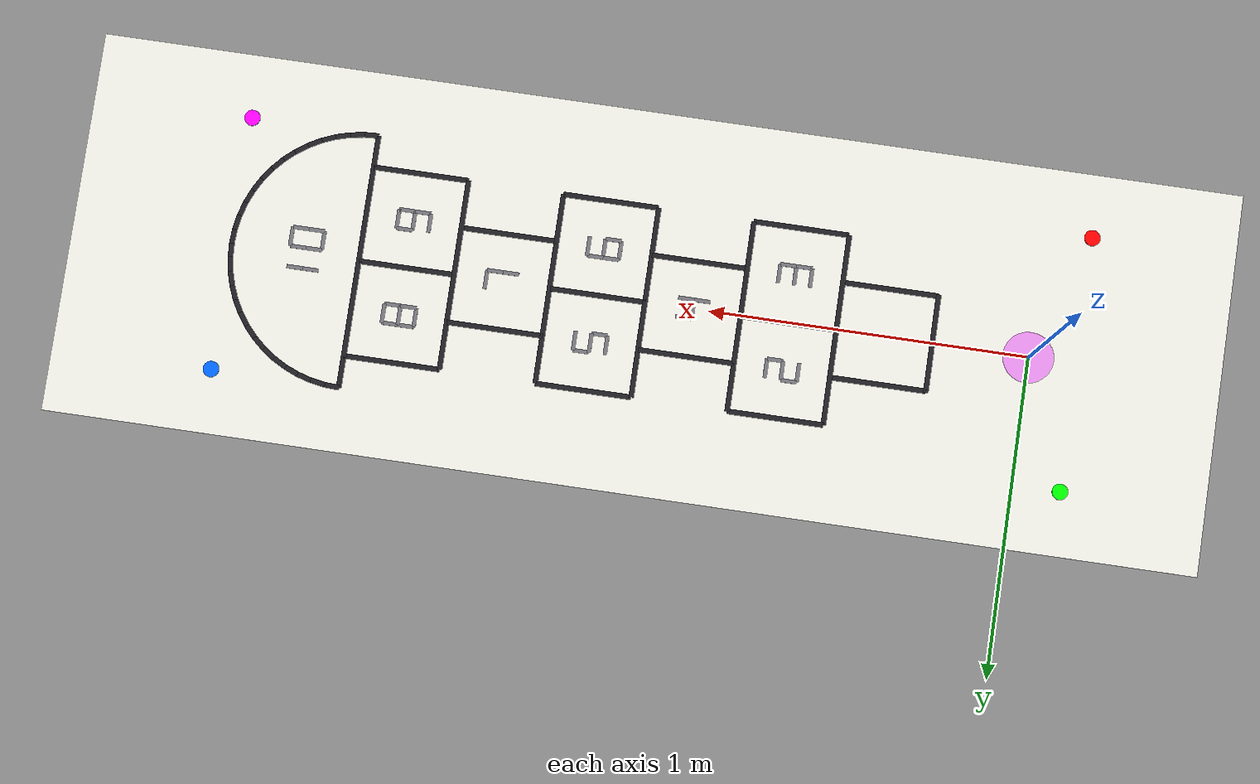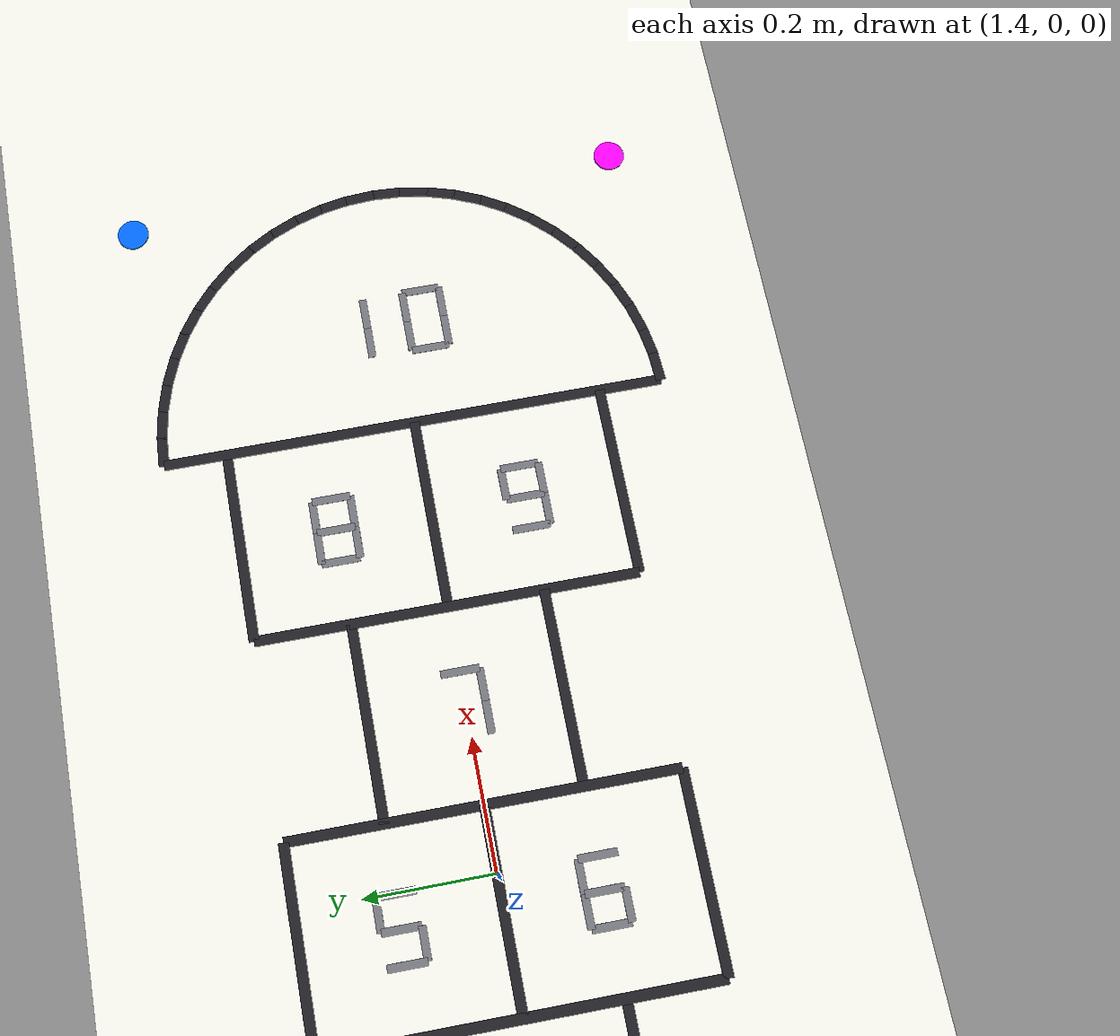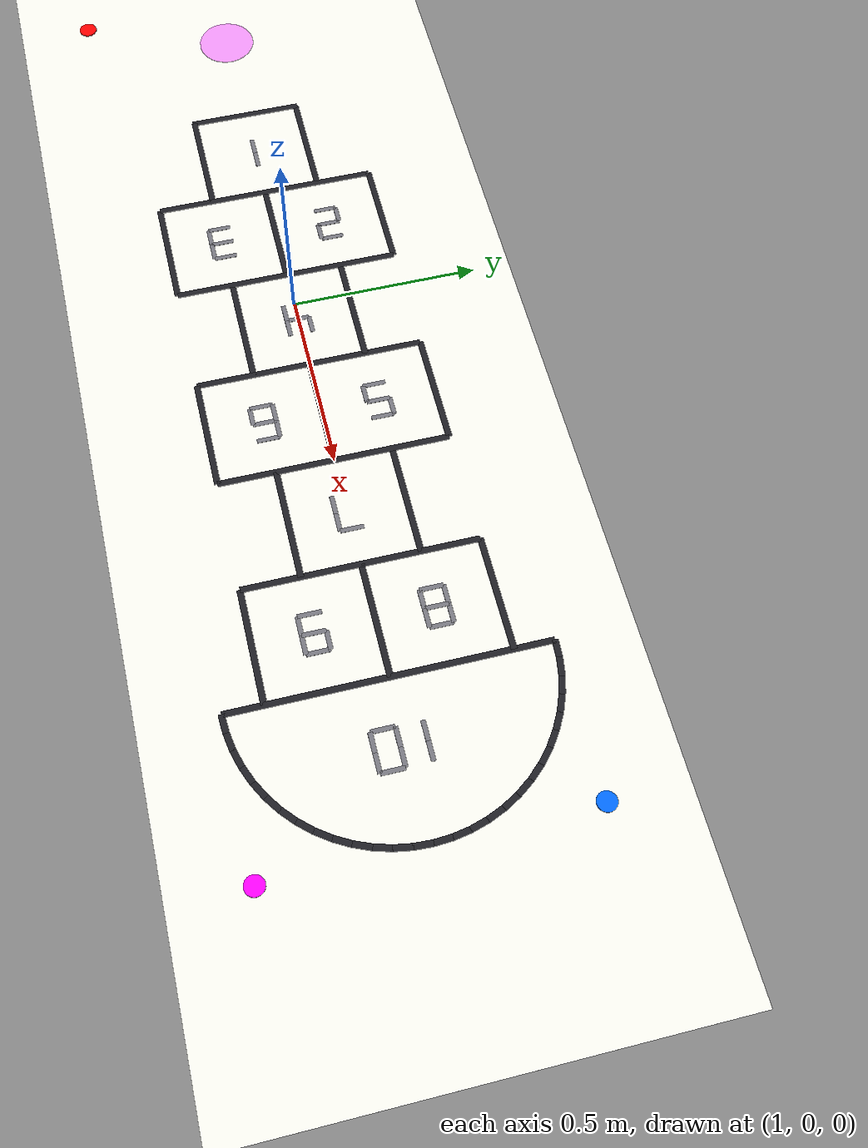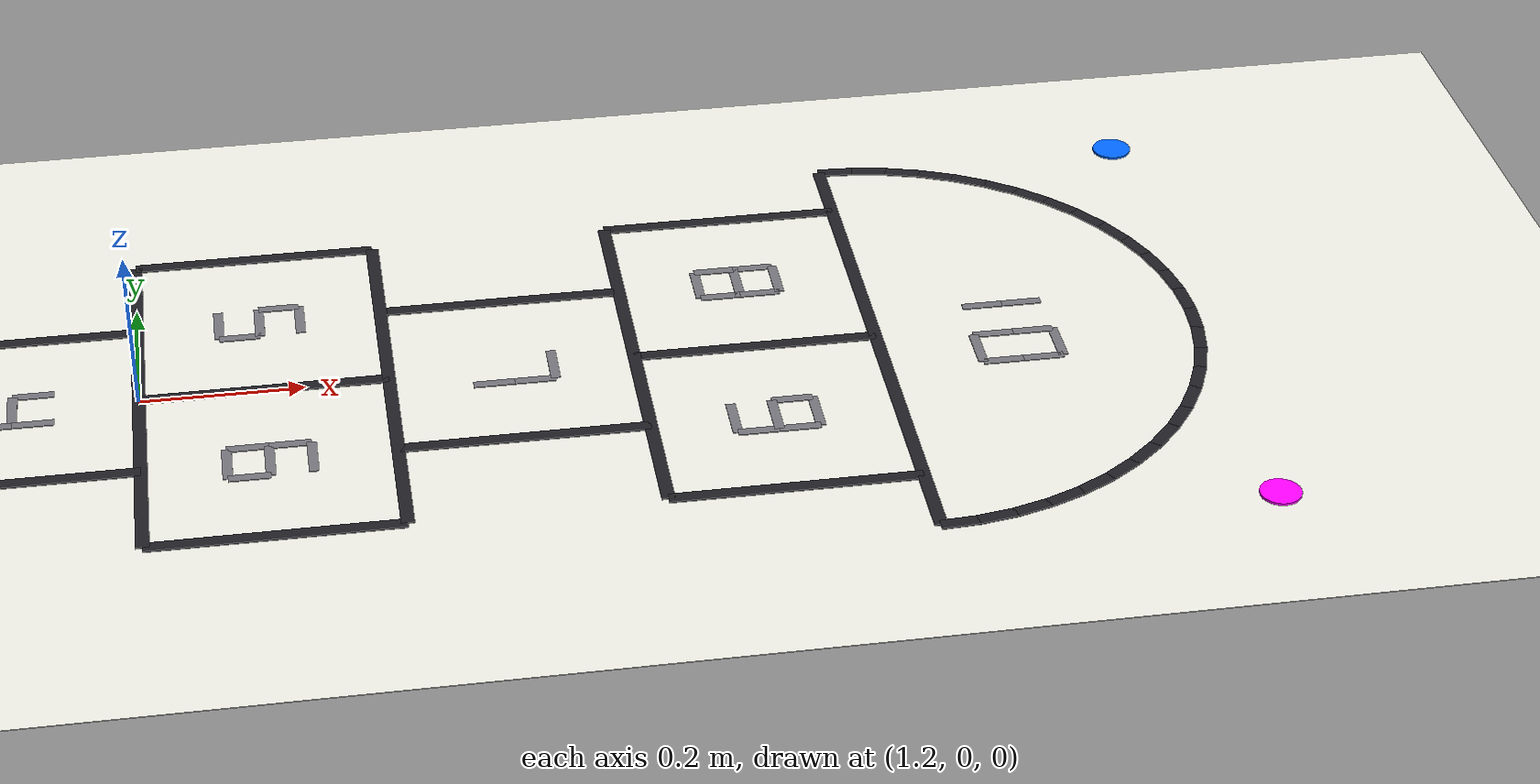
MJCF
<?xml version='1.0' encoding='utf-8'?>
<mujoco model="tablero_rayuela">
  <visual>
    <global offwidth="1280" offheight="720" />
  </visual>
  <worldbody>
    <geom name="board_plate" type="box" size="1.8000 0.60000 0.0005" pos="1.2000 0 0.0005" rgba="0.93 0.93 0.90 1" contype="0" conaffinity="0" />
    <geom name="board_hline_0" type="box" size="0.008 0.1550 0.0015" pos="0.30000 0.00000 0.0015" rgba="0.12 0.12 0.14 1" contype="0" conaffinity="0" />
    <geom name="board_hline_1" type="box" size="0.008 0.3000 0.0015" pos="0.60000 0.00000 0.0015" rgba="0.12 0.12 0.14 1" contype="0" conaffinity="0" />
    <geom name="board_hline_2" type="box" size="0.008 0.3000 0.0015" pos="0.90000 0.00000 0.0015" rgba="0.12 0.12 0.14 1" contype="0" conaffinity="0" />
    <geom name="board_hline_3" type="box" size="0.008 0.3000 0.0015" pos="1.20000 0.00000 0.0015" rgba="0.12 0.12 0.14 1" contype="0" conaffinity="0" />
    <geom name="board_hline_4" type="box" size="0.008 0.3000 0.0015" pos="1.50000 0.00000 0.0015" rgba="0.12 0.12 0.14 1" contype="0" conaffinity="0" />
    <geom name="board_hline_5" type="box" size="0.008 0.3000 0.0015" pos="1.80000 0.00000 0.0015" rgba="0.12 0.12 0.14 1" contype="0" conaffinity="0" />
    <geom name="board_hline_6" type="box" size="0.008 0.4000 0.0015" pos="2.10000 0.00000 0.0015" rgba="0.12 0.12 0.14 1" contype="0" conaffinity="0" />

    <geom name="board_edge1_left" type="box" size="0.15000 0.008 0.0015" pos="0.4500 -0.150000 0.0015" rgba="0.12 0.12 0.14 1" contype="0" conaffinity="0" />
    <geom name="board_edge1_right" type="box" size="0.15000 0.008 0.0015" pos="0.4500 0.150000 0.0015" rgba="0.12 0.12 0.14 1" contype="0" conaffinity="0" />
    <geom name="board_edge2" type="box" size="0.15000 0.008 0.0015" pos="0.7500 -0.3000 0.0015" rgba="0.12 0.12 0.14 1" contype="0" conaffinity="0" />
    <geom name="board_edge3" type="box" size="0.15000 0.008 0.0015" pos="0.7500 0.3000 0.0015" rgba="0.12 0.12 0.14 1" contype="0" conaffinity="0" />
    <geom name="board_edge4_left" type="box" size="0.15000 0.008 0.0015" pos="1.0500 -0.150000 0.0015" rgba="0.12 0.12 0.14 1" contype="0" conaffinity="0" />
    <geom name="board_edge4_right" type="box" size="0.15000 0.008 0.0015" pos="1.0500 0.150000 0.0015" rgba="0.12 0.12 0.14 1" contype="0" conaffinity="0" />
    <geom name="board_edge5" type="box" size="0.15000 0.008 0.0015" pos="1.3500 -0.3000 0.0015" rgba="0.12 0.12 0.14 1" contype="0" conaffinity="0" />
    <geom name="board_edge6" type="box" size="0.15000 0.008 0.0015" pos="1.3500 0.3000 0.0015" rgba="0.12 0.12 0.14 1" contype="0" conaffinity="0" />
    <geom name="board_edge7_left" type="box" size="0.15000 0.008 0.0015" pos="1.6500 -0.150000 0.0015" rgba="0.12 0.12 0.14 1" contype="0" conaffinity="0" />
    <geom name="board_edge7_right" type="box" size="0.15000 0.008 0.0015" pos="1.6500 0.150000 0.0015" rgba="0.12 0.12 0.14 1" contype="0" conaffinity="0" />
    <geom name="board_edge8" type="box" size="0.15000 0.008 0.0015" pos="1.9500 -0.3000 0.0015" rgba="0.12 0.12 0.14 1" contype="0" conaffinity="0" />
    <geom name="board_edge9" type="box" size="0.15000 0.008 0.0015" pos="1.9500 0.3000 0.0015" rgba="0.12 0.12 0.14 1" contype="0" conaffinity="0" />

    <geom name="board_vline_23" type="box" size="0.15000 0.008 0.0015" pos="0.7500 0.0000 0.0015" rgba="0.12 0.12 0.14 1" contype="0" conaffinity="0" />
    <geom name="board_vline_56" type="box" size="0.15000 0.008 0.0015" pos="1.3500 0.00000 0.0015" rgba="0.12 0.12 0.14 1" contype="0" conaffinity="0" />
    <geom name="board_vline_89" type="box" size="0.15000 0.008 0.0015" pos="1.9500 0.00000 0.0015" rgba="0.12 0.12 0.14 1" contype="0" conaffinity="0" />

    <geom name="board_cielo_arc_0" type="box" size="0.02343 0.008 0.0015" pos="2.12239 -0.39874 0.0015" quat="0.999607 0 0 0.028046" rgba="0.12 0.12 0.14 1" contype="0" conaffinity="0" />
    <geom name="board_cielo_arc_1" type="box" size="0.02343 0.008 0.0015" pos="2.16690 -0.39373 0.0015" quat="0.996461 0 0 0.084051" rgba="0.12 0.12 0.14 1" contype="0" conaffinity="0" />
    <geom name="board_cielo_arc_2" type="box" size="0.02343 0.008 0.0015" pos="2.21056 -0.38376 0.0015" quat="0.990181 0 0 0.139790" rgba="0.12 0.12 0.14 1" contype="0" conaffinity="0" />
    <geom name="board_cielo_arc_3" type="box" size="0.02343 0.008 0.0015" pos="2.25283 -0.36897 0.0015" quat="0.980785 0 0 0.195090" rgba="0.12 0.12 0.14 1" contype="0" conaffinity="0" />
    <geom name="board_cielo_arc_4" type="box" size="0.02343 0.008 0.0015" pos="2.29318 -0.34954 0.0015" quat="0.968304 0 0 0.249776" rgba="0.12 0.12 0.14 1" contype="0" conaffinity="0" />
    <geom name="board_cielo_arc_5" type="box" size="0.02343 0.008 0.0015" pos="2.33110 -0.32571 0.0015" quat="0.952775 0 0 0.303677" rgba="0.12 0.12 0.14 1" contype="0" conaffinity="0" />
    <geom name="board_cielo_arc_6" type="box" size="0.02343 0.008 0.0015" pos="2.36612 -0.29779 0.0015" quat="0.934249 0 0 0.356622" rgba="0.12 0.12 0.14 1" contype="0" conaffinity="0" />
    <geom name="board_cielo_arc_7" type="box" size="0.02343 0.008 0.0015" pos="2.39779 -0.26612 0.0015" quat="0.912783 0 0 0.408444" rgba="0.12 0.12 0.14 1" contype="0" conaffinity="0" />
    <geom name="board_cielo_arc_8" type="box" size="0.02343 0.008 0.0015" pos="2.42571 -0.23110 0.0015" quat="0.888446 0 0 0.458982" rgba="0.12 0.12 0.14 1" contype="0" conaffinity="0" />
    <geom name="board_cielo_arc_9" type="box" size="0.02343 0.008 0.0015" pos="2.44954 -0.19318 0.0015" quat="0.861313 0 0 0.508075" rgba="0.12 0.12 0.14 1" contype="0" conaffinity="0" />
    <geom name="board_cielo_arc_10" type="box" size="0.02343 0.008 0.0015" pos="2.46897 -0.15283 0.0015" quat="0.831470 0 0 0.555570" rgba="0.12 0.12 0.14 1" contype="0" conaffinity="0" />
    <geom name="board_cielo_arc_11" type="box" size="0.02343 0.008 0.0015" pos="2.48376 -0.11056 0.0015" quat="0.799010 0 0 0.601317" rgba="0.12 0.12 0.14 1" contype="0" conaffinity="0" />
    <geom name="board_cielo_arc_12" type="box" size="0.02343 0.008 0.0015" pos="2.49373 -0.06690 0.0015" quat="0.764037 0 0 0.645172" rgba="0.12 0.12 0.14 1" contype="0" conaffinity="0" />
    <geom name="board_cielo_arc_13" type="box" size="0.02343 0.008 0.0015" pos="2.49874 -0.02239 0.0015" quat="0.726660 0 0 0.686997" rgba="0.12 0.12 0.14 1" contype="0" conaffinity="0" />
    <geom name="board_cielo_arc_14" type="box" size="0.02343 0.008 0.0015" pos="2.49874 0.02239 0.0015" quat="0.686997 0 0 0.726660" rgba="0.12 0.12 0.14 1" contype="0" conaffinity="0" />
    <geom name="board_cielo_arc_15" type="box" size="0.02343 0.008 0.0015" pos="2.49373 0.06690 0.0015" quat="0.645172 0 0 0.764037" rgba="0.12 0.12 0.14 1" contype="0" conaffinity="0" />
    <geom name="board_cielo_arc_16" type="box" size="0.02343 0.008 0.0015" pos="2.48376 0.11056 0.0015" quat="0.601317 0 0 0.799010" rgba="0.12 0.12 0.14 1" contype="0" conaffinity="0" />
    <geom name="board_cielo_arc_17" type="box" size="0.02343 0.008 0.0015" pos="2.46897 0.15283 0.0015" quat="0.555570 0 0 0.831470" rgba="0.12 0.12 0.14 1" contype="0" conaffinity="0" />
    <geom name="board_cielo_arc_18" type="box" size="0.02343 0.008 0.0015" pos="2.44954 0.19318 0.0015" quat="0.508075 0 0 0.861313" rgba="0.12 0.12 0.14 1" contype="0" conaffinity="0" />
    <geom name="board_cielo_arc_19" type="box" size="0.02343 0.008 0.0015" pos="2.42571 0.23110 0.0015" quat="0.458982 0 0 0.888446" rgba="0.12 0.12 0.14 1" contype="0" conaffinity="0" />
    <geom name="board_cielo_arc_20" type="box" size="0.02343 0.008 0.0015" pos="2.39779 0.26612 0.0015" quat="0.408444 0 0 0.912783" rgba="0.12 0.12 0.14 1" contype="0" conaffinity="0" />
    <geom name="board_cielo_arc_21" type="box" size="0.02343 0.008 0.0015" pos="2.36612 0.29779 0.0015" quat="0.356622 0 0 0.934249" rgba="0.12 0.12 0.14 1" contype="0" conaffinity="0" />
    <geom name="board_cielo_arc_22" type="box" size="0.02343 0.008 0.0015" pos="2.33110 0.32571 0.0015" quat="0.303677 0 0 0.952775" rgba="0.12 0.12 0.14 1" contype="0" conaffinity="0" />
    <geom name="board_cielo_arc_23" type="box" size="0.02343 0.008 0.0015" pos="2.29318 0.34954 0.0015" quat="0.249776 0 0 0.968304" rgba="0.12 0.12 0.14 1" contype="0" conaffinity="0" />
    <geom name="board_cielo_arc_24" type="box" size="0.02343 0.008 0.0015" pos="2.25283 0.36897 0.0015" quat="0.195090 0 0 0.980785" rgba="0.12 0.12 0.14 1" contype="0" conaffinity="0" />
    <geom name="board_cielo_arc_25" type="box" size="0.02343 0.008 0.0015" pos="2.21056 0.38376 0.0015" quat="0.139790 0 0 0.990181" rgba="0.12 0.12 0.14 1" contype="0" conaffinity="0" />
    <geom name="board_cielo_arc_26" type="box" size="0.02343 0.008 0.0015" pos="2.16690 0.39373 0.0015" quat="0.084051 0 0 0.996461" rgba="0.12 0.12 0.14 1" contype="0" conaffinity="0" />
    <geom name="board_cielo_arc_27" type="box" size="0.02343 0.008 0.0015" pos="2.12239 0.39874 0.0015" quat="0.028046 0 0 0.999607" rgba="0.12 0.12 0.14 1" contype="0" conaffinity="0" />

    <!-- BEGIN casilla labels: 7-segment digits, positions from board_geometry.casilla_center() -->
    <geom name="casilla_label_1_0b" type="box" size="0.0250 0.0060 0.0006" pos="0.4750 0.0000 0.0016" rgba="0.45 0.45 0.48 1" contype="0" conaffinity="0" />
    <geom name="casilla_label_1_0c" type="box" size="0.0250 0.0060 0.0006" pos="0.4250 0.0000 0.0016" rgba="0.45 0.45 0.48 1" contype="0" conaffinity="0" />
    <geom name="casilla_label_2_0a" type="box" size="0.0060 0.0300 0.0006" pos="0.8000 0.1500 0.0016" rgba="0.45 0.45 0.48 1" contype="0" conaffinity="0" />
    <geom name="casilla_label_2_0b" type="box" size="0.0250 0.0060 0.0006" pos="0.7750 0.1200 0.0016" rgba="0.45 0.45 0.48 1" contype="0" conaffinity="0" />
    <geom name="casilla_label_2_0g" type="box" size="0.0060 0.0300 0.0006" pos="0.7500 0.1500 0.0016" rgba="0.45 0.45 0.48 1" contype="0" conaffinity="0" />
    <geom name="casilla_label_2_0e" type="box" size="0.0250 0.0060 0.0006" pos="0.7250 0.1800 0.0016" rgba="0.45 0.45 0.48 1" contype="0" conaffinity="0" />
    <geom name="casilla_label_2_0d" type="box" size="0.0060 0.0300 0.0006" pos="0.7000 0.1500 0.0016" rgba="0.45 0.45 0.48 1" contype="0" conaffinity="0" />
    <geom name="casilla_label_3_0a" type="box" size="0.0060 0.0300 0.0006" pos="0.8000 -0.1500 0.0016" rgba="0.45 0.45 0.48 1" contype="0" conaffinity="0" />
    <geom name="casilla_label_3_0b" type="box" size="0.0250 0.0060 0.0006" pos="0.7750 -0.1800 0.0016" rgba="0.45 0.45 0.48 1" contype="0" conaffinity="0" />
    <geom name="casilla_label_3_0g" type="box" size="0.0060 0.0300 0.0006" pos="0.7500 -0.1500 0.0016" rgba="0.45 0.45 0.48 1" contype="0" conaffinity="0" />
    <geom name="casilla_label_3_0c" type="box" size="0.0250 0.0060 0.0006" pos="0.7250 -0.1800 0.0016" rgba="0.45 0.45 0.48 1" contype="0" conaffinity="0" />
    <geom name="casilla_label_3_0d" type="box" size="0.0060 0.0300 0.0006" pos="0.7000 -0.1500 0.0016" rgba="0.45 0.45 0.48 1" contype="0" conaffinity="0" />
    <geom name="casilla_label_4_0f" type="box" size="0.0250 0.0060 0.0006" pos="1.0750 0.0300 0.0016" rgba="0.45 0.45 0.48 1" contype="0" conaffinity="0" />
    <geom name="casilla_label_4_0g" type="box" size="0.0060 0.0300 0.0006" pos="1.0500 0.0000 0.0016" rgba="0.45 0.45 0.48 1" contype="0" conaffinity="0" />
    <geom name="casilla_label_4_0b" type="box" size="0.0250 0.0060 0.0006" pos="1.0750 -0.0300 0.0016" rgba="0.45 0.45 0.48 1" contype="0" conaffinity="0" />
    <geom name="casilla_label_4_0c" type="box" size="0.0250 0.0060 0.0006" pos="1.0250 -0.0300 0.0016" rgba="0.45 0.45 0.48 1" contype="0" conaffinity="0" />
    <geom name="casilla_label_5_0a" type="box" size="0.0060 0.0300 0.0006" pos="1.4000 0.1500 0.0016" rgba="0.45 0.45 0.48 1" contype="0" conaffinity="0" />
    <geom name="casilla_label_5_0f" type="box" size="0.0250 0.0060 0.0006" pos="1.3750 0.1800 0.0016" rgba="0.45 0.45 0.48 1" contype="0" conaffinity="0" />
    <geom name="casilla_label_5_0g" type="box" size="0.0060 0.0300 0.0006" pos="1.3500 0.1500 0.0016" rgba="0.45 0.45 0.48 1" contype="0" conaffinity="0" />
    <geom name="casilla_label_5_0c" type="box" size="0.0250 0.0060 0.0006" pos="1.3250 0.1200 0.0016" rgba="0.45 0.45 0.48 1" contype="0" conaffinity="0" />
    <geom name="casilla_label_5_0d" type="box" size="0.0060 0.0300 0.0006" pos="1.3000 0.1500 0.0016" rgba="0.45 0.45 0.48 1" contype="0" conaffinity="0" />
    <geom name="casilla_label_6_0a" type="box" size="0.0060 0.0300 0.0006" pos="1.4000 -0.1500 0.0016" rgba="0.45 0.45 0.48 1" contype="0" conaffinity="0" />
    <geom name="casilla_label_6_0f" type="box" size="0.0250 0.0060 0.0006" pos="1.3750 -0.1200 0.0016" rgba="0.45 0.45 0.48 1" contype="0" conaffinity="0" />
    <geom name="casilla_label_6_0g" type="box" size="0.0060 0.0300 0.0006" pos="1.3500 -0.1500 0.0016" rgba="0.45 0.45 0.48 1" contype="0" conaffinity="0" />
    <geom name="casilla_label_6_0e" type="box" size="0.0250 0.0060 0.0006" pos="1.3250 -0.1200 0.0016" rgba="0.45 0.45 0.48 1" contype="0" conaffinity="0" />
    <geom name="casilla_label_6_0d" type="box" size="0.0060 0.0300 0.0006" pos="1.3000 -0.1500 0.0016" rgba="0.45 0.45 0.48 1" contype="0" conaffinity="0" />
    <geom name="casilla_label_6_0c" type="box" size="0.0250 0.0060 0.0006" pos="1.3250 -0.1800 0.0016" rgba="0.45 0.45 0.48 1" contype="0" conaffinity="0" />
    <geom name="casilla_label_7_0a" type="box" size="0.0060 0.0300 0.0006" pos="1.7000 0.0000 0.0016" rgba="0.45 0.45 0.48 1" contype="0" conaffinity="0" />
    <geom name="casilla_label_7_0b" type="box" size="0.0250 0.0060 0.0006" pos="1.6750 -0.0300 0.0016" rgba="0.45 0.45 0.48 1" contype="0" conaffinity="0" />
    <geom name="casilla_label_7_0c" type="box" size="0.0250 0.0060 0.0006" pos="1.6250 -0.0300 0.0016" rgba="0.45 0.45 0.48 1" contype="0" conaffinity="0" />
    <geom name="casilla_label_8_0a" type="box" size="0.0060 0.0300 0.0006" pos="2.0000 0.1500 0.0016" rgba="0.45 0.45 0.48 1" contype="0" conaffinity="0" />
    <geom name="casilla_label_8_0b" type="box" size="0.0250 0.0060 0.0006" pos="1.9750 0.1200 0.0016" rgba="0.45 0.45 0.48 1" contype="0" conaffinity="0" />
    <geom name="casilla_label_8_0c" type="box" size="0.0250 0.0060 0.0006" pos="1.9250 0.1200 0.0016" rgba="0.45 0.45 0.48 1" contype="0" conaffinity="0" />
    <geom name="casilla_label_8_0d" type="box" size="0.0060 0.0300 0.0006" pos="1.9000 0.1500 0.0016" rgba="0.45 0.45 0.48 1" contype="0" conaffinity="0" />
    <geom name="casilla_label_8_0e" type="box" size="0.0250 0.0060 0.0006" pos="1.9250 0.1800 0.0016" rgba="0.45 0.45 0.48 1" contype="0" conaffinity="0" />
    <geom name="casilla_label_8_0f" type="box" size="0.0250 0.0060 0.0006" pos="1.9750 0.1800 0.0016" rgba="0.45 0.45 0.48 1" contype="0" conaffinity="0" />
    <geom name="casilla_label_8_0g" type="box" size="0.0060 0.0300 0.0006" pos="1.9500 0.1500 0.0016" rgba="0.45 0.45 0.48 1" contype="0" conaffinity="0" />
    <geom name="casilla_label_9_0a" type="box" size="0.0060 0.0300 0.0006" pos="2.0000 -0.1500 0.0016" rgba="0.45 0.45 0.48 1" contype="0" conaffinity="0" />
    <geom name="casilla_label_9_0b" type="box" size="0.0250 0.0060 0.0006" pos="1.9750 -0.1800 0.0016" rgba="0.45 0.45 0.48 1" contype="0" conaffinity="0" />
    <geom name="casilla_label_9_0c" type="box" size="0.0250 0.0060 0.0006" pos="1.9250 -0.1800 0.0016" rgba="0.45 0.45 0.48 1" contype="0" conaffinity="0" />
    <geom name="casilla_label_9_0d" type="box" size="0.0060 0.0300 0.0006" pos="1.9000 -0.1500 0.0016" rgba="0.45 0.45 0.48 1" contype="0" conaffinity="0" />
    <geom name="casilla_label_9_0f" type="box" size="0.0250 0.0060 0.0006" pos="1.9750 -0.1200 0.0016" rgba="0.45 0.45 0.48 1" contype="0" conaffinity="0" />
    <geom name="casilla_label_9_0g" type="box" size="0.0060 0.0300 0.0006" pos="1.9500 -0.1500 0.0016" rgba="0.45 0.45 0.48 1" contype="0" conaffinity="0" />
    <geom name="casilla_label_10_0b" type="box" size="0.0250 0.0060 0.0006" pos="2.2948 0.0475 0.0016" rgba="0.45 0.45 0.48 1" contype="0" conaffinity="0" />
    <geom name="casilla_label_10_0c" type="box" size="0.0250 0.0060 0.0006" pos="2.2448 0.0475 0.0016" rgba="0.45 0.45 0.48 1" contype="0" conaffinity="0" />
    <geom name="casilla_label_10_1a" type="box" size="0.0060 0.0300 0.0006" pos="2.3198 -0.0475 0.0016" rgba="0.45 0.45 0.48 1" contype="0" conaffinity="0" />
    <geom name="casilla_label_10_1b" type="box" size="0.0250 0.0060 0.0006" pos="2.2948 -0.0775 0.0016" rgba="0.45 0.45 0.48 1" contype="0" conaffinity="0" />
    <geom name="casilla_label_10_1c" type="box" size="0.0250 0.0060 0.0006" pos="2.2448 -0.0775 0.0016" rgba="0.45 0.45 0.48 1" contype="0" conaffinity="0" />
    <geom name="casilla_label_10_1d" type="box" size="0.0060 0.0300 0.0006" pos="2.2198 -0.0475 0.0016" rgba="0.45 0.45 0.48 1" contype="0" conaffinity="0" />
    <geom name="casilla_label_10_1e" type="box" size="0.0250 0.0060 0.0006" pos="2.2448 -0.0175 0.0016" rgba="0.45 0.45 0.48 1" contype="0" conaffinity="0" />
    <geom name="casilla_label_10_1f" type="box" size="0.0250 0.0060 0.0006" pos="2.2948 -0.0175 0.0016" rgba="0.45 0.45 0.48 1" contype="0" conaffinity="0" />
    <!-- END casilla labels -->

    <geom name="fiducial_near_right" type="cylinder" size="0.025 0.002" pos="-0.15000 -0.4000 0.002" rgba="1 0 0 1" contype="0" conaffinity="0" />
    <geom name="fiducial_near_left" type="cylinder" size="0.025 0.002" pos="-0.15000 0.4000 0.002" rgba="0 1 0 1" contype="0" conaffinity="0" />
    <geom name="fiducial_far_left" type="cylinder" size="0.025 0.002" pos="2.5000 0.4000 0.002" rgba="0 0.4 1 1" contype="0" conaffinity="0" />
    <geom name="fiducial_far_right" type="cylinder" size="0.025 0.002" pos="2.5000 -0.4000 0.002" rgba="1 0 1 1" contype="0" conaffinity="0" />

    <geom name="start_spot" type="cylinder" size="0.08 0.0015" pos="0 0 0.0015" rgba="0.941 0.513 0.972 0.8" contype="0" conaffinity="0" />
    <body name="board_center" pos="0.7000 0 0">
      <site name="board_center_site" size="0.001" rgba="0 0 0 0" />
    </body>
    <camera name="angled_cam" pos="-0.15000 -0.9 1.5" mode="targetbody" target="board_center" fovy="58" resolution="1280 720"/>
    <camera name="top_cam" pos="0.97500 0 2.2" mode="targetbody" target="board_center" fovy="55" />
  </worldbody>
</mujoco>
